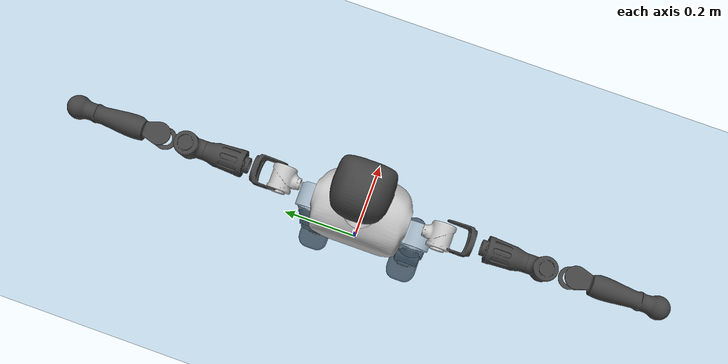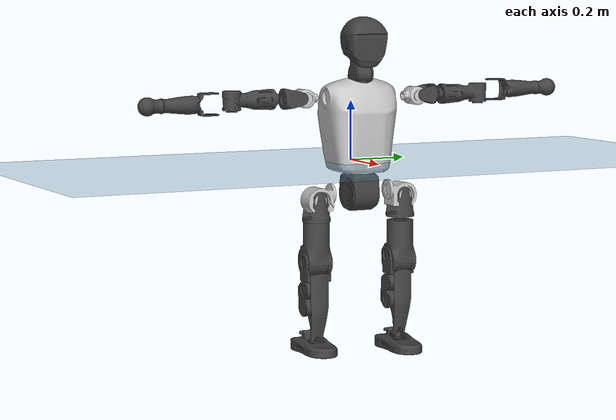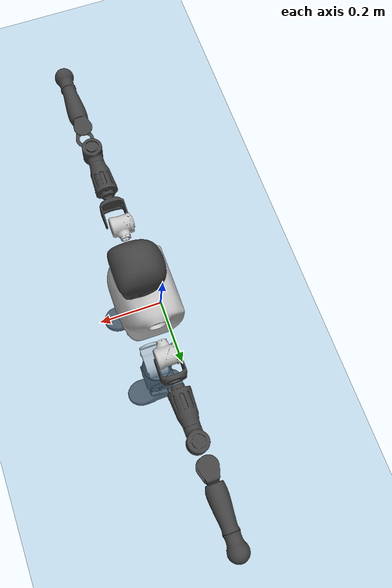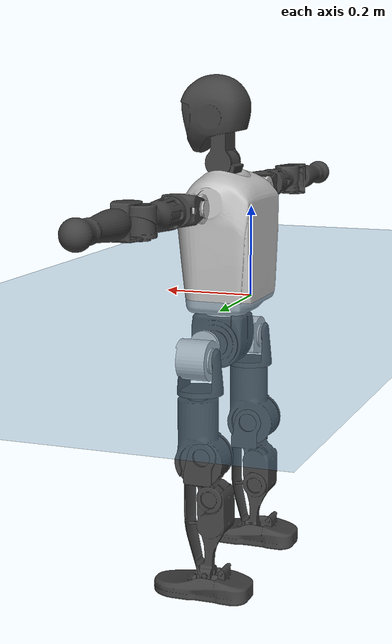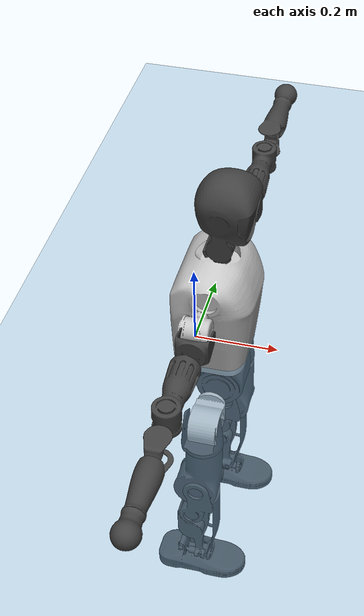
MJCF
<mujoco model="T1">
  <compiler angle="radian" assetdir="assets" balanceinertia="true" inertiafromgeom="false"/>

  <option timestep="0.005" density="1.2" viscosity="2e-05"/>

  <size nkey="1"/>

  <visual>
    <quality shadowsize="8192"/>
    <map shadowclip="0.5"/>
  </visual>

  <default>
    <default class="/">
      <joint armature="0.01" damping="0.01" frictionloss="0.1"/>
      <geom contype="0" conaffinity="0" group="1" solref="-1000 -80"/>
      <site size="0.01 0.005 0.005" group="5"/>
      <general forcelimited="true" biastype="affine" gainprm="25" biasprm="0 -25 -0.6"/>
      <default class="t1">
        <geom rgba="0.25 0.25 0.25 1"/>
        <default class="visual">
          <geom type="mesh" group="2"/>
        </default>
        <default class="collision">
          <geom group="3"/>
        </default>
        <default class="foot">
          <geom size="0.1115 0.05 0.015" type="box" condim="6" group="4" priority="1" solimp="0.015 1 0.015"/>
        </default>
        <default class="reward_collision_sphere">
          <geom group="5" rgba="1 0 0 1"/>
        </default>
      </default>
    </default>
  </default>

  <asset>
    <texture type="skybox" colorspace="auto" name="//unnamed_texture_0" builtin="gradient" rgb1="0.95 0.95 0.95" rgb2="0.95 0.95 0.95" width="100" height="600"/>
    <texture type="2d" colorspace="auto" name="texplane" builtin="checker" rgb1="0.345 0.575 0.748" rgb2="0.345 0.575 0.748" markrgb="1 1 1" width="512" height="512"/>
    <material name="MatPlane" class="/" texture="texplane" texuniform="true" texrepeat="2 2" specular="0.9"/>
    <mesh name="Trunk" class="/" file="Trunk.stl"/>
    <mesh name="H1" class="/" file="H1.stl"/>
    <mesh name="H2" class="/" file="H2.stl"/>
    <mesh name="AL1" class="/" file="AL1.stl"/>
    <mesh name="AL2" class="/" file="AL2.stl"/>
    <mesh name="AL3" class="/" file="AL3.stl"/>
    <mesh name="left_hand_link" class="/" file="left_hand_link.stl"/>
    <mesh name="AR1" class="/" file="AR1.stl"/>
    <mesh name="AR2" class="/" file="AR2.stl"/>
    <mesh name="AR3" class="/" file="AR3.stl"/>
    <mesh name="right_hand_link" class="/" file="right_hand_link.stl"/>
    <mesh name="Waist" class="/" file="Waist.stl"/>
    <mesh name="Hip_Pitch_Left" class="/" file="Hip_Pitch_Left.stl"/>
    <mesh name="Hip_Roll_Left" class="/" file="Hip_Roll_Left.stl"/>
    <mesh name="Hip_Yaw_Left" class="/" file="Hip_Yaw_Left.stl"/>
    <mesh name="Shank_Left" class="/" file="Shank_Left.stl"/>
    <mesh name="Ankle_Cross_Left" class="/" file="Ankle_Cross_Left.stl"/>
    <mesh name="left_foot_link" class="/" file="left_foot_link.stl"/>
    <mesh name="Hip_Pitch_Right" class="/" file="Hip_Pitch_Right.stl"/>
    <mesh name="Hip_Roll_Right" class="/" file="Hip_Roll_Right.stl"/>
    <mesh name="Hip_Yaw_Right" class="/" file="Hip_Yaw_Right.stl"/>
    <mesh name="Shank_Right" class="/" file="Shank_Right.stl"/>
    <mesh name="Ankle_Cross_Right" class="/" file="Ankle_Cross_Right.stl"/>
    <mesh name="right_foot_link" class="/" file="right_foot_link.stl"/>
  </asset>

  <worldbody>
    <geom name="floor" class="/" size="100 100 0.125" type="plane" group="0" material="MatPlane"/>
    <light name="toplight_shadow" class="/" pos="0 0 5" dir="0.0990148 0.0990148 -0.990148" type="directional" ambient="0.04 0.04 0.04" diffuse="0.55 0.55 0.55" specular="0.12 0.12 0.12"/>
    <light name="toplight_fill" class="/" pos="0 0 5" dir="0.0990148 0.0990148 -0.990148" type="directional" castshadow="false" ambient="0.04 0.04 0.04" diffuse="0.3 0.3 0.3" specular="0.08 0.08 0.08"/>
    <body name="trunk" childclass="t1" pos="-0.000458637 -1.96383e-05 -0.000395205" quat="1 0.000205117 0.000612067 0.000170032">
      <inertial pos="0.0539164 -0.00848434 0.0954608" quat="0.999961 0.00700302 0.00474115 0.00263967" mass="19.0313" diaginertia="0.110109 0.577373 0.0473605"/>
      <joint name="//unnamed_joint_0" type="free" armature="0" damping="0" frictionloss="0"/>
      <geom name="//unnamed_geom_1" class="visual" rgba="0.76 0.76 0.76 1" mesh="Trunk"/>
      <geom name="//unnamed_geom_2" class="collision" size="0.0873539 0.116472 0.174708" pos="0.0620582 0 0.116215" type="box"/>
      <geom name="//unnamed_geom_3" class="reward_collision_sphere" size="0.133943" pos="0.0620582 0 0.0968462"/>
      <geom name="//unnamed_geom_4" class="reward_collision_sphere" size="0.0174708" pos="0.0620582 0.126768 0"/>
      <geom name="//unnamed_geom_5" class="reward_collision_sphere" size="0.0174708" pos="0.0620582 -0.126768 0"/>
      <geom name="//unnamed_geom_6" class="reward_collision_sphere" size="0.0174708" pos="0.0620582 0.159579 0.174323"/>
      <geom name="//unnamed_geom_7" class="reward_collision_sphere" size="0.0174708" pos="0.0620582 -0.159579 0.174323"/>
      <site name="imu" pos="0.0106036 0.00574894 0.0057429" size="0.0116472"/>
      <camera name="track" pos="0 -2.98278 0" quat="0.707107 0.707107 0 0" mode="trackcom"/>
      <camera name="ego_camera" pos="0.126185 0 0.406754" quat="-0.5 -0.5 0.5 0.5"/>
      <body name="H1" pos="0.0640298 0.00554769 0.229024" quat="1 0.000115471 0.000326111 -0.000210598">
        <inertial pos="-0.0021552 -0.0106694 0.0538191" quat="0.769493 -0.0385469 -0.0112754 0.637391" mass="0.721519" diaginertia="0.000300178 0.00169252 0.000124813"/>
        <joint name="AAHead_yaw" pos="0 0 0" axis="0.00119657 0.00153927 0.999998" range="-1.56772 1.70285" armature="0.0101899" damping="0" frictionloss="0.168913"/>
        <geom name="//unnamed_geom_8" class="visual" mesh="H1"/>
        <body name="H2" pos="0.000750693 -0.000256584 0.0651203" quat="1 -0.000488183 0.000795984 -0.000257178">
          <inertial pos="0.00700194 0.00866915 0.0953168" quat="0.993061 0.0778182 -0.062701 -0.0619954" mass="1.01082" diaginertia="0.00240738 0.0143913 0.00142328"/>
          <joint name="Head_pitch" pos="0 0 0" axis="-0.00513827 -0.999979 0.00386129" range="-1.25999 0.360401" armature="0.0117211" damping="0" frictionloss="0.134071"/>
          <geom name="//unnamed_geom_9" class="visual" mesh="H2"/>
          <geom name="//unnamed_geom_10" class="collision" size="0.0931775" pos="0.010343 0 0.106531"/>
          <geom name="//unnamed_geom_11" class="reward_collision_sphere" size="0.104825" pos="0.0206861 0 0.0968462"/>
        </body>
      </body>
      <body name="AL1" pos="0.0630722 0.162229 0.213947" quat="0.999994 0.00163292 0.00213349 0.00221799">
        <inertial pos="-0.00134299 0.0679782 0.000273224" quat="0.527591 0.469077 -0.506485 0.495064" mass="0.818281" diaginertia="0.00161851 0.0087142 0.000255399"/>
        <joint name="Left_Shoulder_Pitch" pos="0 0 0" axis="-0.00113241 0.999998 -0.00141911" range="-3.2712 1.11086" armature="0.0118309" damping="0.00333924" frictionloss="0.11968"/>
        <geom name="//unnamed_geom_12" class="visual" rgba="0.76 0.76 0.76 1" mesh="AL1"/>
        <body name="AL2" pos="0.00060549 0.0648755 0.00335638" quat="0.999998 0.0010106 -0.00112192 0.000863081">
          <inertial pos="-0.00280279 0.0483476 -0.00197788" quat="0.482386 0.48224 -0.489925 0.542883" mass="0.256305" diaginertia="0.000495289 0.00261564 0.000141604"/>
          <joint name="Left_Shoulder_Roll" pos="0 0 0" axis="-0.999973 0.00726471 -0.000764144" range="-1.58014 1.73993" armature="0.0127907" damping="0.0069475" frictionloss="0.107141"/>
          <geom name="//unnamed_geom_13" class="visual" mesh="AL2"/>
          <body name="AL3" pos="0.00122496 0.0814997 -0.00147858" quat="1 0.000444829 -0.00024506 0.000182836">
            <inertial pos="0.00730369 0.129275 0.00229728" quat="0.709827 0.704217 -0.00829861 0.0124279" mass="1.4282" diaginertia="0.0140694 0.0902429 0.00050023"/>
            <joint name="Left_Elbow_Pitch" pos="0 0 0" axis="0.00310547 -0.999982 -0.00520864" range="-2.23771 2.12894" armature="0.0101574" damping="0" frictionloss="0.109218"/>
            <geom name="//unnamed_geom_14" class="visual" mesh="AL3"/>
            <geom name="//unnamed_geom_15" class="collision" size="0.0349415 0.0873539" pos="0 0.0745695 0" quat="0.707105 0.707108 0 0" type="cylinder"/>
            <geom name="//unnamed_geom_16" class="reward_collision_sphere" size="0.0419299"/>
            <body name="left_hand_link" pos="-0.000925751 0.212498 0.00785754" quat="0.999999 0.000877373 0.000360106 -0.000323992">
              <inertial pos="0.00139571 0.161152 0.00278404" quat="0.706671 0.70753 -0.00112577 -0.00404674" mass="0.53144" diaginertia="0.0103131 0.0590605 0.000178971"/>
              <joint name="Left_Elbow_Yaw" pos="0 0 0" axis="0.000124209 0.000357585 1" range="-2.30294 -0.0299494" armature="0.0114771" damping="0.0505317" frictionloss="0.0889115"/>
              <geom name="//unnamed_geom_17" class="visual" mesh="left_hand_link"/>
              <geom name="//unnamed_geom_18" class="collision" size="0.0349415 0.101913" pos="0 0.193881 0" quat="0.707105 0.707108 0 0" type="cylinder"/>
              <geom name="//unnamed_geom_19" class="reward_collision_sphere" size="0.0582359"/>
              <geom name="//unnamed_geom_20" class="reward_collision_sphere" size="0.0407651" pos="0 0.164053 0"/>
              <geom name="//unnamed_geom_21" class="reward_collision_sphere" size="0.0407651" pos="0 0.320649 0"/>
            </body>
          </body>
        </body>
      </body>
      <body name="AR1" pos="0.0588866 -0.157989 0.215913" quat="0.999999 0.00111822 0.00101275 0.000713086">
        <inertial pos="0.00176014 -0.0665039 0.00715488" quat="0.530122 0.500346 -0.492355 0.475617" mass="0.775409" diaginertia="0.00161845 0.00936214 0.000237333"/>
        <joint name="Right_Shoulder_Pitch" pos="0 0 0" axis="-0.00824277 -0.999961 -0.00321593" range="-1.22607 3.28979" armature="0.0125648" damping="0.0394495" frictionloss="0.161115"/>
        <geom name="//unnamed_geom_22" class="visual" rgba="0.76 0.76 0.76 1" mesh="AR1"/>
        <body name="AR2" pos="0.00726711 -0.0703901 0.00139785" quat="1 9.16575e-05 -0.000105972 -7.23455e-05">
          <inertial pos="0.00613462 -0.0480762 0.00232653" quat="0.538083 0.468361 -0.514905 0.47537" mass="0.26012" diaginertia="0.000461898 0.00262036 0.000145456"/>
          <joint name="Right_Shoulder_Roll" pos="0 0 0" axis="-0.999827 -0.00156405 -0.018547" range="-1.75045 1.55193" armature="0.0119266" damping="0.0496769" frictionloss="0.123024"/>
          <geom name="//unnamed_geom_23" class="visual" mesh="AR2"/>
          <body name="AR3" pos="-0.000419463 -0.0898272 0.000339008" quat="0.999999 0.000564871 0.00114023 0.000278639">
            <inertial pos="0.000725517 -0.12914 -0.00121303" quat="0.708215 0.705841 -0.0144776 -0.00305549" mass="1.55245" diaginertia="0.0148363 0.100954 0.000512036"/>
            <joint name="Right_Elbow_Pitch" pos="0 0 0" axis="-0.000739364 1 -0.00017554" range="-2.31259 2.27863" armature="0.0121327" damping="0.00199863" frictionloss="0.126576"/>
            <geom name="//unnamed_geom_24" class="visual" mesh="AR3"/>
            <geom name="//unnamed_geom_25" class="collision" size="0.0349415 0.0873539" pos="0 -0.0745695 0" quat="0.707105 0.707108 0 0" type="cylinder"/>
            <geom name="//unnamed_geom_26" class="reward_collision_sphere" size="0.0419299"/>
            <body name="right_hand_link" pos="0.00451151 -0.222996 -0.00819119" quat="0.999999 0.000838965 0.000169739 -0.00129817">
              <inertial pos="0.00185705 -0.166935 0.000423316" quat="0.701253 0.712908 -0.00250418 -0.00110926" mass="0.498721" diaginertia="0.00961104 0.059635 0.000181141"/>
              <joint name="Right_Elbow_Yaw" pos="0 0 0" axis="-3.86105e-05 -0.0031081 0.999995" stiffness="0.00159356" range="-0.0623732 2.41476" armature="0.0104426" damping="0.023825" frictionloss="0.0742003"/>
              <geom name="//unnamed_geom_27" class="visual" mesh="right_hand_link"/>
              <geom name="//unnamed_geom_28" class="collision" size="0.0349415 0.101913" pos="0 -0.193881 0" quat="0.707105 0.707108 0 0" type="cylinder"/>
              <geom name="//unnamed_geom_29" class="reward_collision_sphere" size="0.0582359"/>
              <geom name="//unnamed_geom_30" class="reward_collision_sphere" size="0.0407651" pos="0 -0.164053 0"/>
              <geom name="//unnamed_geom_31" class="reward_collision_sphere" size="0.0407651" pos="0 -0.320649 0"/>
            </body>
          </body>
        </body>
      </body>
      <body name="Waist" pos="0.0690556 -0.00312319 -0.104191" quat="1 4.66569e-06 -9.96905e-05 -8.3571e-05">
        <inertial pos="0.0116874 0.00141524 0.00930671" quat="0.984533 -0.00678704 -0.175029 -0.0035919" mass="4.41404" diaginertia="0.00721318 0.0392615 0.00416254"/>
        <joint name="Waist" pos="0 0 0" axis="-0.00036256 0.00245747 0.999997" range="-1.52972 1.57953" armature="0.00972994" damping="0.00343366" frictionloss="0.112572"/>
        <geom name="//unnamed_geom_32" class="visual" mesh="Waist"/>
        <body name="Hip_Pitch_Left" pos="0.00291145 0.155847 0.00588153" quat="0.999999 -0.000691484 0.000577271 0.000779433">
          <inertial pos="0.000528537 -0.0157424 -0.021111" quat="0.974782 0.222541 0.0116236 0.0118307" mass="1.47594" diaginertia="0.00213624 0.0103961 0.00107549"/>
          <joint name="Left_Hip_Pitch" pos="0 0 0" axis="-0.00349502 0.999991 -0.0022884" range="-1.79135 1.42963" armature="0.007111" damping="0.00260689" frictionloss="0.117277"/>
          <geom name="//unnamed_geom_33" class="visual" rgba="0.76 0.76 0.76 1" mesh="Hip_Pitch_Left"/>
          <body name="Hip_Roll_Left" pos="-0.00684696 0.00112245 -0.0173227" quat="0.999999 0.00133872 0.000628674 -0.000518446">
            <inertial pos="0.00267882 0.000620053 -0.0531379" quat="0.726508 -0.0125633 0.0203023 0.686743" mass="0.667407" diaginertia="0.00219843 0.0109816 0.000437487"/>
            <joint name="Left_Hip_Roll" pos="0 0 0" axis="-0.999604 -0.025016 0.0129002" range="-1.56574 0.229487" armature="0.00774051" damping="0" frictionloss="0.12865"/>
            <geom name="//unnamed_geom_34" class="visual" mesh="Hip_Roll_Left"/>
            <geom name="//unnamed_geom_35" class="reward_collision_sphere" size="0.0640595"/>
            <body name="Hip_Yaw_Left" pos="0.00352161 -0.0019214 -0.088331" quat="0.999999 5.18534e-05 -0.00093504 -0.000625069">
              <inertial pos="-0.00174033 0.000657035 -0.088133" quat="0.703353 -0.0381311 -0.0280224 0.709264" mass="3.32816" diaginertia="0.0291464 0.200278 0.00211373"/>
              <joint name="Left_Hip_Yaw" pos="0 0 0" axis="-0.00379914 0.006867 -0.999969" range="-0.962842 0.878103" armature="0.0122008" damping="0.00713151" frictionloss="0.116166"/>
              <geom name="//unnamed_geom_36" class="visual" mesh="Hip_Yaw_Left"/>
              <geom name="//unnamed_geom_37" class="collision" size="0.0582359 0.0931775" type="cylinder"/>
              <body name="Shank_Left" pos="-0.0225569 -0.00023756 -0.120197" quat="1 -0.000462539 -0.000107611 -0.00018862">
                <inertial pos="-0.00754949 -0.0052471 -0.126755" quat="0.997558 0.00147202 -0.0242137 0.0654999" mass="2.97099" diaginertia="0.0399848 0.242518 0.00157283"/>
                <joint name="Left_Knee_Pitch" pos="0 0 0" axis="0.0101722 0.999834 -0.0150874" range="-0.027772 2.35751" armature="0.0119505" damping="0" frictionloss="0.108148"/>
                <geom name="//unnamed_geom_38" class="visual" mesh="Shank_Left"/>
                <geom name="//unnamed_geom_39" class="collision" size="0.0582359 0.0873539" pos="0 0 -0.116215" type="cylinder"/>
                <geom name="//unnamed_geom_40" class="reward_collision_sphere" size="0.0757067"/>
                <body name="Ankle_Cross_Left" pos="0.00294331 -0.000177505 -0.278154" quat="0.999999 0.00116266 -0.000163745 0.000393417">
                  <inertial pos="-0.00291848 -0.00406638 -0.00963352" quat="0.441436 0.562601 0.554868 0.425131" mass="0.105573" diaginertia="3.11066e-05 0.000190963 9.34897e-06"/>
                  <joint name="Left_Ankle_Pitch" pos="0 0 0" axis="0.000279861 1 0.000486147" stiffness="0.0048947" range="-1.01075 0.381469" armature="0.0124974" damping="0" frictionloss="0.120481"/>
                  <geom name="//unnamed_geom_41" class="visual" mesh="Ankle_Cross_Left"/>
                  <body name="left_foot_link" pos="0.000160434 0.00344524 -0.0188574" quat="1 -0.000353749 0.000431662 0.00025582">
                    <inertial pos="0.00414149 0.000865767 -0.0035855" quat="0.000785774 0.618645 0.00181902 0.785668" mass="1.19194" diaginertia="0.00370716 0.0183779 0.00178008"/>
                    <joint name="Left_Ankle_Roll" pos="0 0 0" axis="-0.999909 -0.00569484 0.0122233" range="-0.432552 0.440416" armature="0.0111594" damping="0" frictionloss="0.116675"/>
                    <geom name="//unnamed_geom_42" class="visual" mesh="left_foot_link"/>
                    <geom name="left_foot" class="foot" size="0.117158 0.0409094 0.0198038" pos="0.010343 0 -0.0145269"/>
                    <geom name="//unnamed_geom_44" class="reward_collision_sphere" size="0.0605654" pos="0.010343 0 -0.0145269"/>
                    <geom name="//unnamed_geom_45" class="reward_collision_sphere" size="0.0349415" pos="0.0982588 -0.034302 -0.0145269"/>
                    <geom name="//unnamed_geom_46" class="reward_collision_sphere" size="0.0349415" pos="-0.0724013 -0.034302 -0.0145269"/>
                    <site name="left_foot" class="foot" pos="0.010343 0 -0.0145269" size="0.0116472"/>
                  </body>
                </body>
              </body>
            </body>
          </body>
        </body>
        <body name="Hip_Pitch_Right" pos="-0.00227392 -0.157195 0.000822793" quat="0.999995 0.000719451 0.00111258 -0.00303791">
          <inertial pos="0.00550121 0.0106641 -0.0234564" quat="0.973634 -0.227721 0.0114968 -0.00685966" mass="1.53655" diaginertia="0.00203572 0.0101798 0.00113031"/>
          <joint name="Right_Hip_Pitch" pos="0 0 0" axis="-0.00827418 -0.999965 -0.00131269" range="-1.564 1.96412" armature="0.013619" damping="0.00243329" frictionloss="0.114427"/>
          <geom name="//unnamed_geom_47" class="visual" rgba="0.76 0.76 0.76 1" mesh="Hip_Pitch_Right"/>
          <body name="Hip_Roll_Right" pos="-0.00747956 0.00202625 -0.0138388" quat="1 -0.000652279 -0.000126885 -0.000392897">
            <inertial pos="0.00117497 0.000173914 -0.0549088" quat="0.697891 0.0311123 -0.00666043 0.715497" mass="0.623866" diaginertia="0.00206009 0.0106584 0.000451672"/>
            <joint name="Right_Hip_Roll" pos="0 0 0" axis="-0.999856 -0.00196293 -0.0168625" range="-0.375648 1.53578" armature="0.0111724" damping="0" frictionloss="0.106512"/>
            <geom name="//unnamed_geom_48" class="visual" mesh="Hip_Roll_Right"/>
            <geom name="//unnamed_geom_49" class="reward_collision_sphere" size="0.0640595"/>
            <body name="Hip_Yaw_Right" pos="0.00146338 -0.00105757 -0.0767895" quat="0.999999 -0.000815818 -0.0001662 0.000732851">
              <inertial pos="-0.00640163 0.00172098 -0.0792443" quat="0.714613 -0.0324016 -0.0319531 0.698038" mass="3.54083" diaginertia="0.0315821 0.183729 0.00230499"/>
              <joint name="Right_Hip_Yaw" pos="0 0 0" axis="-0.0259435 -0.0375716 -0.998957" range="-0.97404 1.01941" armature="0.00824308" damping="0.0473153" frictionloss="0.118268"/>
              <geom name="//unnamed_geom_50" class="visual" mesh="Hip_Yaw_Right"/>
              <geom name="//unnamed_geom_51" class="collision" size="0.0582359 0.0931775" type="cylinder"/>
              <body name="Shank_Right" pos="-0.0108452 -0.00226247 -0.13502" quat="0.999999 -0.00061948 -0.000943469 -3.06301e-05">
                <inertial pos="-0.00581142 -0.000484952 -0.114087" quat="0.998967 -0.00307264 -0.0338749 -0.0301174" mass="2.50153" diaginertia="0.0366468 0.235846 0.00145995"/>
                <joint name="Right_Knee_Pitch" pos="0 0 0" axis="0.0196019 -0.999696 0.0149596" range="-2.47795 -0.00903932" armature="0.00710279" damping="0" frictionloss="0.120338"/>
                <geom name="//unnamed_geom_52" class="visual" mesh="Shank_Right"/>
                <geom name="//unnamed_geom_53" class="collision" size="0.0582359 0.0873539" pos="0 0 -0.116215" type="cylinder"/>
                <geom name="//unnamed_geom_54" class="reward_collision_sphere" size="0.0757067"/>
                <body name="Ankle_Cross_Right" pos="0.00228806 0.000781282 -0.26847" quat="1 -0.000128929 -6.99319e-05 0.000598525">
                  <inertial pos="-0.00456694 0.00297641 -0.00757967" quat="0.443166 0.551001 0.551055 0.443102" mass="0.112901" diaginertia="3.26947e-05 0.000179767 9.37851e-06"/>
                  <joint name="Right_Ankle_Pitch" pos="0 0 0" axis="-0.00204527 -0.999967 -0.00789572" stiffness="0.0282245" range="-0.235153 0.989387" armature="0.0115675" damping="0.0159768" frictionloss="0.107557"/>
                  <geom name="//unnamed_geom_55" class="visual" mesh="Ankle_Cross_Right"/>
                  <body name="right_foot_link" pos="-0.00683103 -0.0015257 -0.00830099" quat="1 -6.11445e-05 5.08304e-05 4.83166e-05">
                    <inertial pos="0.00793505 -0.00112368 -0.00948136" quat="-9.25565e-05 0.62065 0.000605776 0.784088" mass="1.09666" diaginertia="0.00326979 0.0189535 0.00195178"/>
                    <joint name="Right_Ankle_Roll" pos="0 0 0" axis="-0.999866 -0.0159597 0.00356328" range="-0.290284 0.445053" armature="0.0129479" damping="0.0384344" frictionloss="0.128283"/>
                    <geom name="//unnamed_geom_56" class="visual" mesh="right_foot_link"/>
                    <geom name="right_foot" class="foot" size="0.0879987 0.0563788 0.0173195" pos="0.010343 0 -0.0145269"/>
                    <geom name="//unnamed_geom_58" class="reward_collision_sphere" size="0.0465887"/>
                    <geom name="//unnamed_geom_59" class="reward_collision_sphere" size="0.0349415" pos="0.010343 0 -0.0145269"/>
                    <geom name="//unnamed_geom_60" class="reward_collision_sphere" size="0.0349415" pos="0.0982588 0.034302 -0.0145269"/>
                    <geom name="//unnamed_geom_61" class="reward_collision_sphere" size="0.0349415" pos="-0.0724013 0.034302 -0.0145269"/>
                    <site name="right_foot" class="foot" pos="0.010343 0 -0.0145269" size="0.0116472"/>
                  </body>
                </body>
              </body>
            </body>
          </body>
        </body>
      </body>
    </body>
  </worldbody>

  <contact>
    <pair class="/" geom1="floor" geom2="left_foot" name="//unnamed_contact_0"/>
    <pair class="/" geom1="floor" geom2="right_foot" name="//unnamed_contact_1"/>
  </contact>

  <actuator>
    <general name="AAHead_yaw" class="/" joint="AAHead_yaw" forcerange="-8.46944 8.46944" gainprm="32.0929" biasprm="0 -32.0929 -0.654935"/>
    <general name="Head_pitch" class="/" joint="Head_pitch" forcerange="-8.05619 8.05619" gainprm="32.0929" biasprm="0 -32.0929 -0.654935"/>
    <general name="Left_Shoulder_Pitch" class="/" joint="Left_Shoulder_Pitch" forcerange="-22.6353 22.6353" gainprm="32.0929" biasprm="0 -32.0929 -0.654935"/>
    <general name="Left_Shoulder_Roll" class="/" joint="Left_Shoulder_Roll" forcerange="-20.3802 20.3802" gainprm="32.0929" biasprm="0 -32.0929 -0.654935"/>
    <general name="Left_Elbow_Pitch" class="/" joint="Left_Elbow_Pitch" forcerange="-20.4491 20.4491" gainprm="32.0929" biasprm="0 -32.0929 -0.654935"/>
    <general name="Left_Elbow_Yaw" class="/" joint="Left_Elbow_Yaw" forcerange="-20.6572 20.6572" gainprm="32.0929" biasprm="0 -32.0929 -0.654935"/>
    <general name="Right_Shoulder_Pitch" class="/" joint="Right_Shoulder_Pitch" forcerange="-21.6036 21.6036" gainprm="32.0929" biasprm="0 -32.0929 -0.654935"/>
    <general name="Right_Shoulder_Roll" class="/" joint="Right_Shoulder_Roll" forcerange="-22.4269 22.4269" gainprm="32.0929" biasprm="0 -32.0929 -0.654935"/>
    <general name="Right_Elbow_Pitch" class="/" joint="Right_Elbow_Pitch" forcerange="-15.4389 15.4389" gainprm="32.0929" biasprm="0 -32.0929 -0.654935"/>
    <general name="Right_Elbow_Yaw" class="/" joint="Right_Elbow_Yaw" forcerange="-21.1393 21.1393" gainprm="32.0929" biasprm="0 -32.0929 -0.654935"/>
    <general name="Waist" class="/" joint="Waist" forcerange="-35.2736 35.2736" gainprm="32.0929" biasprm="0 -32.0929 -0.654935"/>
    <general name="Left_Hip_Pitch" class="/" joint="Left_Hip_Pitch" forcerange="-55.2824 55.2824" gainprm="32.0929" biasprm="0 -32.0929 -0.654935"/>
    <general name="Left_Hip_Roll" class="/" joint="Left_Hip_Roll" forcerange="-29.1009 29.1009" gainprm="32.0929" biasprm="0 -32.0929 -0.654935"/>
    <general name="Left_Hip_Yaw" class="/" joint="Left_Hip_Yaw" forcerange="-41.6852 41.6852" gainprm="32.0929" biasprm="0 -32.0929 -0.654935"/>
    <general name="Left_Knee_Pitch" class="/" joint="Left_Knee_Pitch" forcerange="-74.7928 74.7928" gainprm="32.0929" biasprm="0 -32.0929 -0.654935"/>
    <general name="Left_Ankle_Pitch" class="/" joint="Left_Ankle_Pitch" forcerange="-22.8098 22.8098" gainprm="32.0929" biasprm="0 -32.0929 -0.654935"/>
    <general name="Left_Ankle_Roll" class="/" joint="Left_Ankle_Roll" forcerange="-13.5414 13.5414" gainprm="32.0929" biasprm="0 -32.0929 -0.654935"/>
    <general name="Right_Hip_Pitch" class="/" joint="Right_Hip_Pitch" forcerange="-52.185 52.185" gainprm="32.0929" biasprm="0 -32.0929 -0.654935"/>
    <general name="Right_Hip_Roll" class="/" joint="Right_Hip_Roll" forcerange="-36.0878 36.0878" gainprm="32.0929" biasprm="0 -32.0929 -0.654935"/>
    <general name="Right_Hip_Yaw" class="/" joint="Right_Hip_Yaw" forcerange="-25.0628 25.0628" gainprm="32.0929" biasprm="0 -32.0929 -0.654935"/>
    <general name="Right_Knee_Pitch" class="/" joint="Right_Knee_Pitch" forcerange="-69.2241 69.2241" gainprm="32.0929" biasprm="0 -32.0929 -0.654935"/>
    <general name="Right_Ankle_Pitch" class="/" joint="Right_Ankle_Pitch" forcerange="-21.7953 21.7953" gainprm="32.0929" biasprm="0 -32.0929 -0.654935"/>
    <general name="Right_Ankle_Roll" class="/" joint="Right_Ankle_Roll" forcerange="-19.0369 19.0369" gainprm="32.0929" biasprm="0 -32.0929 -0.654935"/>
  </actuator>

  <sensor>
    <gyro site="imu" name="imu_angular_velocity"/>
    <velocimeter site="imu" name="imu_linear_velocity"/>
    <framelinvel objtype="site" objname="left_foot" name="left_foot_global_linear_velocity"/>
    <framelinvel objtype="site" objname="right_foot" name="right_foot_global_linear_velocity"/>
  </sensor>

  <keyframe>
    <key name="home" qpos="0 0 0.6385 1 0 0 0 0 0 0 1.4 0 -0.4 0 -1.4 0 0.4 0 -0.4 0 0 0.8 -0.4 0 0.4 0 0 -0.8 0.4 0"/>
  </keyframe>
</mujoco>
